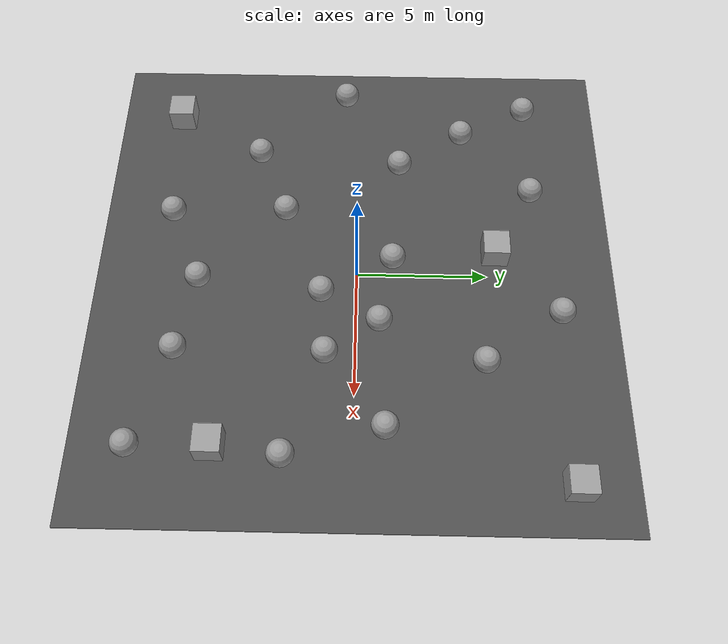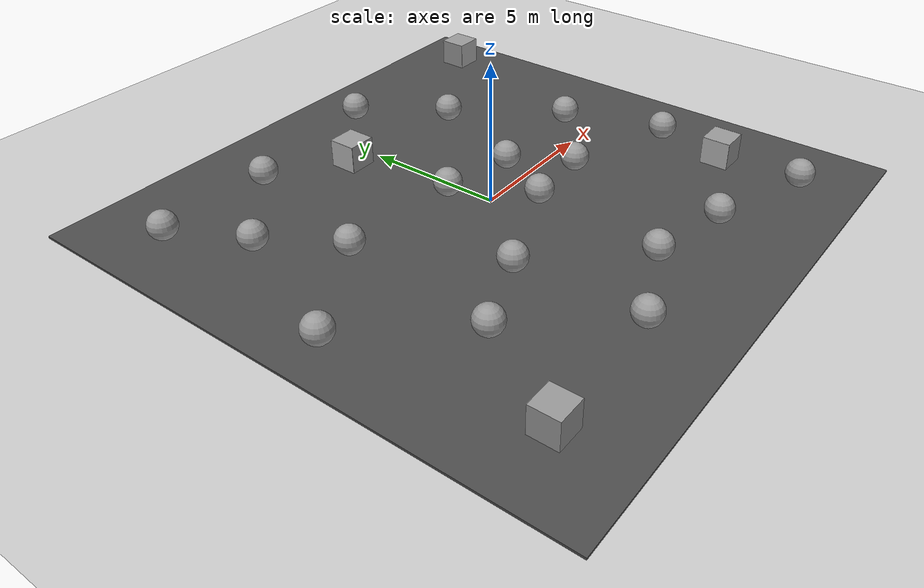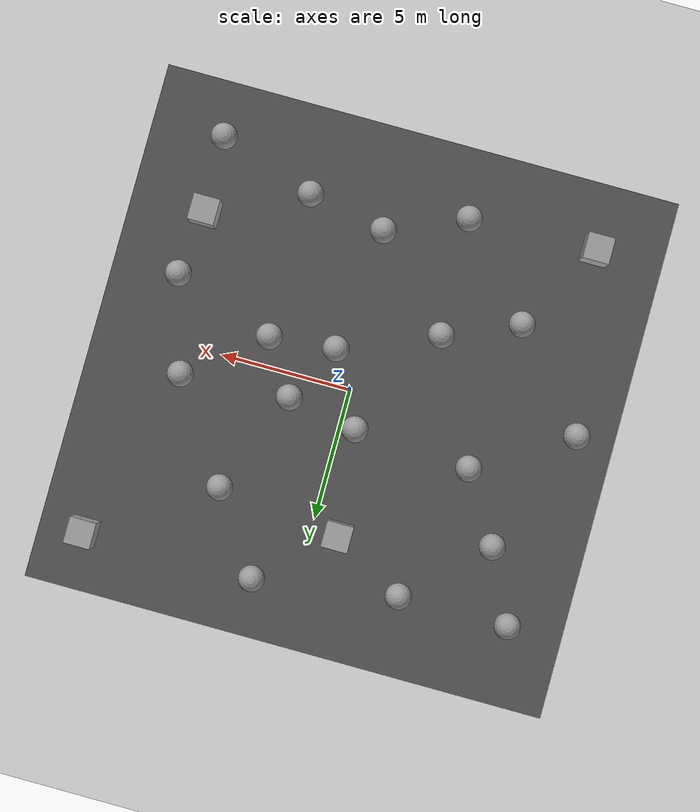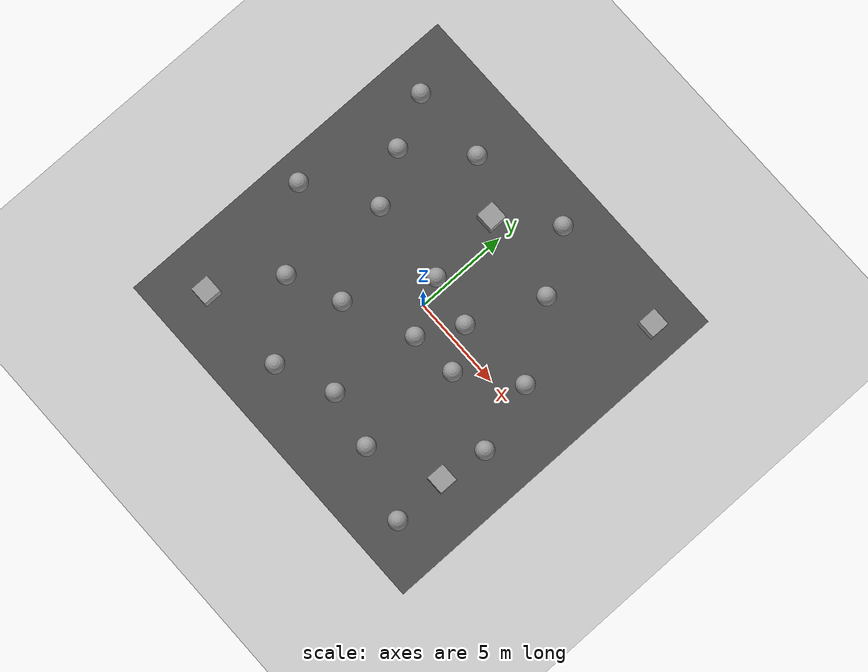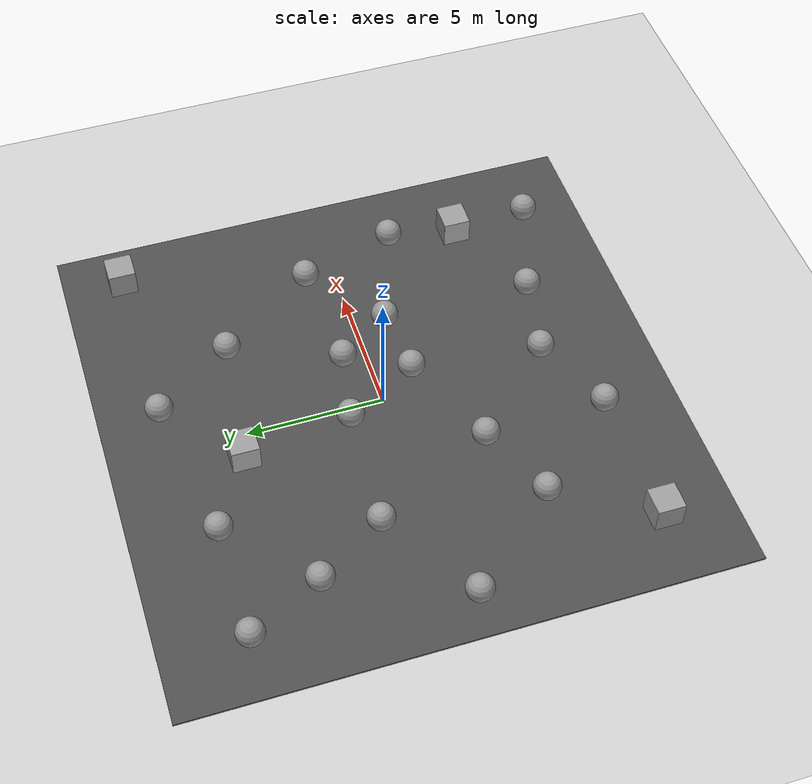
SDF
<sdf version="1.6">
 <world name="default">
  <light name="sun" type="directional">
   <pose>0 0 10 0 -0 0</pose>
   <diffuse>0.8 0.8 0.8 1</diffuse>
   <specular>0.2 0.2 0.2 1</specular>
   <attenuation>
    <range>1000</range>
    <constant>0.9</constant>
    <linear>0.01</linear>
    <quadratic>0.001</quadratic>
   </attenuation>
   <direction>-0.5 0.1 -0.9</direction>
  </light>
  <model name="ground_plane">
   <static>1</static>
   <link name="link">
    <collision name="collision">
     <geometry><plane><normal>0 0 1</normal><size>100 100</size></plane></geometry>
     <surface><friction><ode><mu>100</mu><mu2>50</mu2></ode></friction></surface>
    </collision>
    <visual name="visual">
     <cast_shadows>0</cast_shadows>
     <geometry><plane><normal>0 0 1</normal><size>100 100</size></plane></geometry>
     <material>
      <script><uri>file://media/materials/scripts/gazebo.material</uri><name>Gazebo/Grey</name></script>
     </material>
    </visual>
   </link>
  </model>
  <gravity>0 0 -9.8</gravity>
  <magnetic_field>6e-06 2.3e-05 -4.2e-05</magnetic_field>
  <atmosphere type="adiabatic"/>
  <physics name="default_physics" default="0" type="ode">
   <max_step_size>0.001</max_step_size>
   <real_time_factor>1</real_time_factor>
   <real_time_update_rate>1000</real_time_update_rate>
  </physics>
  <scene><ambient>0.4 0.4 0.4 1</ambient><background>0.7 0.7 0.7 1</background><shadows>1</shadows></scene>
  <audio><device>default</device></audio>
  <spherical_coordinates>
   <surface_model>EARTH_WGS84</surface_model>
   <latitude_deg>0</latitude_deg>
   <longitude_deg>0</longitude_deg>
   <elevation>0</elevation>
   <heading_deg>0</heading_deg>
  </spherical_coordinates>
  <model name="asphalt_plane">
   <static>1</static>
   <link name="link">
    <collision name="collision"><geometry><box><size>20 20 0.1</size></box></geometry></collision>
    <visual name="visual">
     <cast_shadows>0</cast_shadows>
     <geometry><box><size>20 20 0.1</size></box></geometry>
     <material>
      <script>
       <uri>model://asphalt_plane/materials/scripts</uri>
       <uri>model://asphalt_plane/materials/textures</uri>
       <name>vrc/asphalt</name>
      </script>
     </material>
    </visual>
   </link>
   <pose>-0.108878 -0.066396 0 0 -0 0</pose>
  </model>
  <model name="unit_box">
   <pose>6.99999 -5.00001 0.55 0 -0 4.5e-05</pose>
   <link name="link">
    <inertial>
     <mass>1</mass>
     <inertia>
      <ixx>0.166667</ixx>
      <ixy>0</ixy>
      <ixz>0</ixz>
      <iyy>0.166667</iyy>
      <iyz>0</iyz>
      <izz>0.166667</izz>
     </inertia>
    </inertial>
    <collision name="collision"><geometry><box><size>1 1 1</size></box></geometry></collision>
    <visual name="visual">
     <geometry><box><size>1 1 1</size></box></geometry>
     <material>
      <script><name>Gazebo/Grey</name><uri>file://media/materials/scripts/gazebo.material</uri></script>
     </material>
    </visual>
   </link>
  </model>
  <model name="unit_box_0">
   <pose>-0.995968 5.35674 0.55 0 -0 5.5e-05</pose>
   <link name="link">
    <inertial>
     <mass>1</mass>
     <inertia>
      <ixx>0.166667</ixx>
      <ixy>0</ixy>
      <ixz>0</ixz>
      <iyy>0.166667</iyy>
      <iyz>0</iyz>
      <izz>0.166667</izz>
     </inertia>
    </inertial>
    <collision name="collision"><geometry><box><size>1 1 1</size></box></geometry></collision>
    <visual name="visual">
     <geometry><box><size>1 1 1</size></box></geometry>
     <material>
      <script><name>Gazebo/Grey</name><uri>file://media/materials/scripts/gazebo.material</uri></script>
     </material>
    </visual>
   </link>
  </model>
  <model name="unit_box_1">
   <pose>-7.50001 -7.50001 0.549999 -2e-06 0 6.3e-05</pose>
   <link name="link">
    <inertial>
     <mass>1</mass>
     <inertia>
      <ixx>0.166667</ixx>
      <ixy>0</ixy>
      <ixz>0</ixz>
      <iyy>0.166667</iyy>
      <iyz>0</iyz>
      <izz>0.166667</izz>
     </inertia>
    </inertial>
    <collision name="collision"><geometry><box><size>1 1 1</size></box></geometry></collision>
    <visual name="visual">
     <geometry><box><size>1 1 1</size></box></geometry>
     <material>
      <script><name>Gazebo/Grey</name><uri>file://media/materials/scripts/gazebo.material</uri></script>
     </material>
    </visual>
   </link>
  </model>
  <model name="unit_box_2">
   <pose>8.17464 7.73331 0.55 0 -0 5.5e-05</pose>
   <link name="link">
    <inertial>
     <mass>1</mass>
     <inertia>
      <ixx>0.166667</ixx>
      <ixy>0</ixy>
      <ixz>0</ixz>
      <iyy>0.166667</iyy>
      <iyz>0</iyz>
      <izz>0.166667</izz>
     </inertia>
    </inertial>
    <collision name="collision"><geometry><box><size>1 1 1</size></box></geometry></collision>
    <visual name="visual">
     <geometry><box><size>1 1 1</size></box></geometry>
     <material>
      <script><name>Gazebo/Grey</name><uri>file://media/materials/scripts/gazebo.material</uri></script>
     </material>
    </visual>
   </link>
  </model>
  <model name="Apriltag36_11_00000">
   <link name="main">
    <visual name="main_Visual">
     <geometry><box><size>1 1 0.01</size></box></geometry>
     <material>
      <script>
       <uri>model://Apriltag36_11_00000/materials/scripts</uri>
       <uri>model://Apriltag36_11_00000/materials/textures</uri>
       <name>Apriltag36_11_00000</name>
      </script>
     </material>
    </visual>
   </link>
   <static>1</static>
   <pose>6.49477 -5.00022 0.548581 0 -1.57079 0</pose>
  </model>
  <model name="Apriltag36_11_00001">
   <link name="main">
    <visual name="main_Visual">
     <geometry><box><size>1 1 0.01</size></box></geometry>
     <material>
      <script>
       <uri>model://Apriltag36_11_00001/materials/scripts</uri>
       <uri>model://Apriltag36_11_00001/materials/textures</uri>
       <name>Apriltag36_11_00001</name>
      </script>
     </material>
    </visual>
   </link>
   <static>1</static>
   <pose>-1.50121 5.35642 0.547403 0 -1.57079 0</pose>
  </model>
  <model name="Apriltag36_11_00002">
   <link name="main">
    <visual name="main_Visual">
     <geometry><box><size>1 1 0.01</size></box></geometry>
     <material>
      <script>
       <uri>model://Apriltag36_11_00002/materials/scripts</uri>
       <uri>model://Apriltag36_11_00002/materials/textures</uri>
       <name>Apriltag36_11_00002</name>
      </script>
     </material>
    </visual>
   </link>
   <static>1</static>
   <pose>8.17 7.23683 0.55 1.57079 -1.57079 -5e-06</pose>
  </model>
  <model name="Apriltag36_11_00003">
   <link name="main">
    <visual name="main_Visual">
     <geometry><box><size>1 1 0.01</size></box></geometry>
     <material>
      <script>
       <uri>model://Apriltag36_11_00003/materials/scripts</uri>
       <uri>model://Apriltag36_11_00003/materials/textures</uri>
       <name>Apriltag36_11_00003</name>
      </script>
     </material>
    </visual>
   </link>
   <static>1</static>
   <pose>-7.5 -7 0.55 1.57079 1.57079 0</pose>
  </model>
  <model name="unit_sphere">
   <pose>-0.573747 1.36764 0.55 0 -0 0</pose>
   <link name="link">
    <inertial>
     <mass>1</mass>
     <inertia><ixx>0.1</ixx><ixy>0</ixy><ixz>0</ixz><iyy>0.1</iyy><iyz>0</iyz><izz>0.1</izz></inertia>
    </inertial>
    <collision name="collision"><geometry><sphere><radius>0.5</radius></sphere></geometry></collision>
    <visual name="visual">
     <geometry><sphere><radius>0.5</radius></sphere></geometry>
     <material>
      <script><name>Gazebo/Grey</name><uri>file://media/materials/scripts/gazebo.material</uri></script>
     </material>
    </visual>
   </link>
  </model>
  <model name="unit_sphere_0">
   <pose>2.10425 0.867566 0.55 0 -0 0</pose>
   <link name="link">
    <inertial>
     <mass>1</mass>
     <inertia><ixx>0.1</ixx><ixy>0</ixy><ixz>0</ixz><iyy>0.1</iyy><iyz>0</iyz><izz>0.1</izz></inertia>
    </inertial>
    <collision name="collision"><geometry><sphere><radius>0.5</radius></sphere></geometry></collision>
    <visual name="visual">
     <geometry><sphere><radius>0.5</radius></sphere></geometry>
     <material>
      <script><name>Gazebo/Grey</name><uri>file://media/materials/scripts/gazebo.material</uri></script>
     </material>
    </visual>
   </link>
  </model>
  <model name="unit_sphere_1">
   <pose>0.909956 -1.34513 0.55 0 -0 0</pose>
   <link name="link">
    <inertial>
     <mass>1</mass>
     <inertia><ixx>0.1</ixx><ixy>0</ixy><ixz>0</ixz><iyy>0.1</iyy><iyz>0</iyz><izz>0.1</izz></inertia>
    </inertial>
    <collision name="collision"><geometry><sphere><radius>0.5</radius></sphere></geometry></collision>
    <visual name="visual">
     <geometry><sphere><radius>0.5</radius></sphere></geometry>
     <material>
      <script><name>Gazebo/Grey</name><uri>file://media/materials/scripts/gazebo.material</uri></script>
     </material>
    </visual>
   </link>
  </model>
  <model name="unit_sphere_2">
   <pose>3.42736 -1.12816 0.55 0 -0 0</pose>
   <link name="link">
    <inertial>
     <mass>1</mass>
     <inertia><ixx>0.1</ixx><ixy>0</ixy><ixz>0</ixz><iyy>0.1</iyy><iyz>0</iyz><izz>0.1</izz></inertia>
    </inertial>
    <collision name="collision"><geometry><sphere><radius>0.5</radius></sphere></geometry></collision>
    <visual name="visual">
     <geometry><sphere><radius>0.5</radius></sphere></geometry>
     <material>
      <script><name>Gazebo/Grey</name><uri>file://media/materials/scripts/gazebo.material</uri></script>
     </material>
    </visual>
   </link>
  </model>
  <model name="unit_sphere_3">
   <pose>6.2503 1.10099 0.55 0 -0 0</pose>
   <link name="link">
    <inertial>
     <mass>1</mass>
     <inertia><ixx>0.1</ixx><ixy>0</ixy><ixz>0</ixz><iyy>0.1</iyy><iyz>0</iyz><izz>0.1</izz></inertia>
    </inertial>
    <collision name="collision"><geometry><sphere><radius>0.5</radius></sphere></geometry></collision>
    <visual name="visual">
     <geometry><sphere><radius>0.5</radius></sphere></geometry>
     <material>
      <script><name>Gazebo/Grey</name><uri>file://media/materials/scripts/gazebo.material</uri></script>
     </material>
    </visual>
   </link>
  </model>
  <model name="unit_sphere_4">
   <pose>3.3693 -6.67867 0.55 0 -0 0</pose>
   <link name="link">
    <inertial>
     <mass>1</mass>
     <inertia><ixx>0.1</ixx><ixy>0</ixy><ixz>0</ixz><iyy>0.1</iyy><iyz>0</iyz><izz>0.1</izz></inertia>
    </inertial>
    <collision name="collision"><geometry><sphere><radius>0.5</radius></sphere></geometry></collision>
    <visual name="visual">
     <geometry><sphere><radius>0.5</radius></sphere></geometry>
     <material>
      <script><name>Gazebo/Grey</name><uri>file://media/materials/scripts/gazebo.material</uri></script>
     </material>
    </visual>
   </link>
  </model>
  <model name="unit_sphere_5">
   <pose>7.33127 -2.50072 0.55 0 -0 0</pose>
   <link name="link">
    <inertial>
     <mass>1</mass>
     <inertia><ixx>0.1</ixx><ixy>0</ixy><ixz>0</ixz><iyy>0.1</iyy><iyz>0</iyz><izz>0.1</izz></inertia>
    </inertial>
    <collision name="collision"><geometry><sphere><radius>0.5</radius></sphere></geometry></collision>
    <visual name="visual">
     <geometry><sphere><radius>0.5</radius></sphere></geometry>
     <material>
      <script><name>Gazebo/Grey</name><uri>file://media/materials/scripts/gazebo.material</uri></script>
     </material>
    </visual>
   </link>
  </model>
  <model name="unit_sphere_6">
   <pose>7.06169 -7.90962 0.55 0 -0 0</pose>
   <link name="link">
    <inertial>
     <mass>1</mass>
     <inertia><ixx>0.1</ixx><ixy>0</ixy><ixz>0</ixz><iyy>0.1</iyy><iyz>0</iyz><izz>0.1</izz></inertia>
    </inertial>
    <collision name="collision"><geometry><sphere><radius>0.5</radius></sphere></geometry></collision>
    <visual name="visual">
     <geometry><sphere><radius>0.5</radius></sphere></geometry>
     <material>
      <script><name>Gazebo/Grey</name><uri>file://media/materials/scripts/gazebo.material</uri></script>
     </material>
    </visual>
   </link>
  </model>
  <model name="unit_sphere_7">
   <pose>0.381677 -6.08062 0.55 0 -0 0</pose>
   <link name="link">
    <inertial>
     <mass>1</mass>
     <inertia><ixx>0.1</ixx><ixy>0</ixy><ixz>0</ixz><iyy>0.1</iyy><iyz>0</iyz><izz>0.1</izz></inertia>
    </inertial>
    <collision name="collision"><geometry><sphere><radius>0.5</radius></sphere></geometry></collision>
    <visual name="visual">
     <geometry><sphere><radius>0.5</radius></sphere></geometry>
     <material>
      <script><name>Gazebo/Grey</name><uri>file://media/materials/scripts/gazebo.material</uri></script>
     </material>
    </visual>
   </link>
  </model>
  <model name="unit_sphere_8">
   <pose>-5.03661 1.64668 0.55 0 -0 0</pose>
   <link name="link">
    <inertial>
     <mass>1</mass>
     <inertia><ixx>0.1</ixx><ixy>0</ixy><ixz>0</ixz><iyy>0.1</iyy><iyz>0</iyz><izz>0.1</izz></inertia>
    </inertial>
    <collision name="collision"><geometry><sphere><radius>0.5</radius></sphere></geometry></collision>
    <visual name="visual">
     <geometry><sphere><radius>0.5</radius></sphere></geometry>
     <material>
      <script><name>Gazebo/Grey</name><uri>file://media/materials/scripts/gazebo.material</uri></script>
     </material>
    </visual>
   </link>
  </model>
  <model name="unit_sphere_9">
   <pose>-3.76882 6.90546 0.55 0 -0 0</pose>
   <link name="link">
    <inertial>
     <mass>1</mass>
     <inertia><ixx>0.1</ixx><ixy>0</ixy><ixz>0</ixz><iyy>0.1</iyy><iyz>0</iyz><izz>0.1</izz></inertia>
    </inertial>
    <collision name="collision"><geometry><sphere><radius>0.5</radius></sphere></geometry></collision>
    <visual name="visual">
     <geometry><sphere><radius>0.5</radius></sphere></geometry>
     <material>
      <script><name>Gazebo/Grey</name><uri>file://media/materials/scripts/gazebo.material</uri></script>
     </material>
    </visual>
   </link>
  </model>
  <model name="unit_sphere_10">
   <pose>3.70607 4.78017 0.55 0 -0 0</pose>
   <link name="link">
    <inertial>
     <mass>1</mass>
     <inertia><ixx>0.1</ixx><ixy>0</ixy><ixz>0</ixz><iyy>0.1</iyy><iyz>0</iyz><izz>0.1</izz></inertia>
    </inertial>
    <collision name="collision"><geometry><sphere><radius>0.5</radius></sphere></geometry></collision>
    <visual name="visual">
     <geometry><sphere><radius>0.5</radius></sphere></geometry>
     <material>
      <script><name>Gazebo/Grey</name><uri>file://media/materials/scripts/gazebo.material</uri></script>
     </material>
    </visual>
   </link>
  </model>
  <model name="unit_sphere_11">
   <pose>1.65823 7.71983 0.55 0 -0 0</pose>
   <link name="link">
    <inertial>
     <mass>1</mass>
     <inertia><ixx>0.1</ixx><ixy>0</ixy><ixz>0</ixz><iyy>0.1</iyy><iyz>0</iyz><izz>0.1</izz></inertia>
    </inertial>
    <collision name="collision"><geometry><sphere><radius>0.5</radius></sphere></geometry></collision>
    <visual name="visual">
     <geometry><sphere><radius>0.5</radius></sphere></geometry>
     <material>
      <script><name>Gazebo/Grey</name><uri>file://media/materials/scripts/gazebo.material</uri></script>
     </material>
    </visual>
   </link>
  </model>
  <model name="unit_sphere_12">
   <pose>-2.60108 -7.35589 0.55 0 -0 0</pose>
   <link name="link">
    <inertial>
     <mass>1</mass>
     <inertia><ixx>0.1</ixx><ixy>0</ixy><ixz>0</ixz><iyy>0.1</iyy><iyz>0</iyz><izz>0.1</izz></inertia>
    </inertial>
    <collision name="collision"><geometry><sphere><radius>0.5</radius></sphere></geometry></collision>
    <visual name="visual">
     <geometry><sphere><radius>0.5</radius></sphere></geometry>
     <material>
      <script><name>Gazebo/Grey</name><uri>file://media/materials/scripts/gazebo.material</uri></script>
     </material>
    </visual>
   </link>
  </model>
  <model name="unit_sphere_13">
   <pose>-2.73935 -2.87012 0.55 0 -0 0</pose>
   <link name="link">
    <inertial>
     <mass>1</mass>
     <inertia><ixx>0.1</ixx><ixy>0</ixy><ixz>0</ixz><iyy>0.1</iyy><iyz>0</iyz><izz>0.1</izz></inertia>
    </inertial>
    <collision name="collision"><geometry><sphere><radius>0.5</radius></sphere></geometry></collision>
    <visual name="visual">
     <geometry><sphere><radius>0.5</radius></sphere></geometry>
     <material>
      <script><name>Gazebo/Grey</name><uri>file://media/materials/scripts/gazebo.material</uri></script>
     </material>
    </visual>
   </link>
  </model>
  <model name="unit_sphere_14">
   <pose>-5.54287 -4.0616 0.55 0 -0 0</pose>
   <link name="link">
    <inertial>
     <mass>1</mass>
     <inertia><ixx>0.1</ixx><ixy>0</ixy><ixz>0</ixz><iyy>0.1</iyy><iyz>0</iyz><izz>0.1</izz></inertia>
    </inertial>
    <collision name="collision"><geometry><sphere><radius>0.5</radius></sphere></geometry></collision>
    <visual name="visual">
     <geometry><sphere><radius>0.5</radius></sphere></geometry>
     <material>
      <script><name>Gazebo/Grey</name><uri>file://media/materials/scripts/gazebo.material</uri></script>
     </material>
    </visual>
   </link>
  </model>
  <model name="unit_sphere_15">
   <pose>-6.6405 4.21428 0.55 0 -0 0</pose>
   <link name="link">
    <inertial>
     <mass>1</mass>
     <inertia><ixx>0.1</ixx><ixy>0</ixy><ixz>0</ixz><iyy>0.1</iyy><iyz>0</iyz><izz>0.1</izz></inertia>
    </inertial>
    <collision name="collision"><geometry><sphere><radius>0.5</radius></sphere></geometry></collision>
    <visual name="visual">
     <geometry><sphere><radius>0.5</radius></sphere></geometry>
     <material>
      <script><name>Gazebo/Grey</name><uri>file://media/materials/scripts/gazebo.material</uri></script>
     </material>
    </visual>
   </link>
  </model>
  <model name="unit_sphere_16">
   <pose>-8.59524 -0.576642 0.55 0 -0 0</pose>
   <link name="link">
    <inertial>
     <mass>1</mass>
     <inertia><ixx>0.1</ixx><ixy>0</ixy><ixz>0</ixz><iyy>0.1</iyy><iyz>0</iyz><izz>0.1</izz></inertia>
    </inertial>
    <collision name="collision"><geometry><sphere><radius>0.5</radius></sphere></geometry></collision>
    <visual name="visual">
     <geometry><sphere><radius>0.5</radius></sphere></geometry>
     <material>
      <script><name>Gazebo/Grey</name><uri>file://media/materials/scripts/gazebo.material</uri></script>
     </material>
    </visual>
   </link>
  </model>
  <model name="unit_sphere_17">
   <pose>-7.95277 6.89413 0.55 0 -0 0</pose>
   <link name="link">
    <inertial>
     <mass>1</mass>
     <inertia><ixx>0.1</ixx><ixy>0</ixy><ixz>0</ixz><iyy>0.1</iyy><iyz>0</iyz><izz>0.1</izz></inertia>
    </inertial>
    <collision name="collision"><geometry><sphere><radius>0.5</radius></sphere></geometry></collision>
    <visual name="visual">
     <geometry><sphere><radius>0.5</radius></sphere></geometry>
     <material>
      <script><name>Gazebo/Grey</name><uri>file://media/materials/scripts/gazebo.material</uri></script>
     </material>
    </visual>
   </link>
  </model>
 </world>
</sdf>
